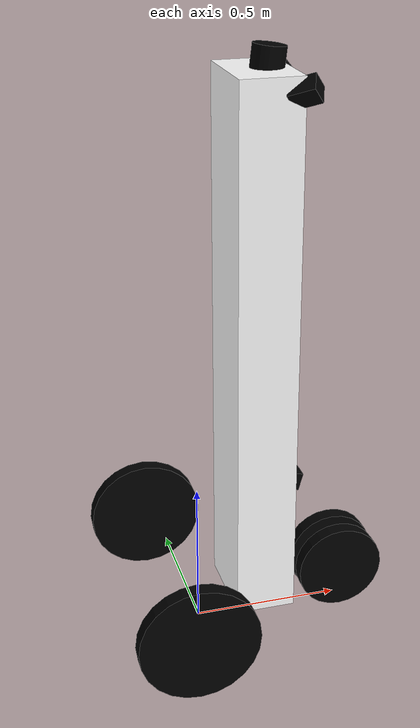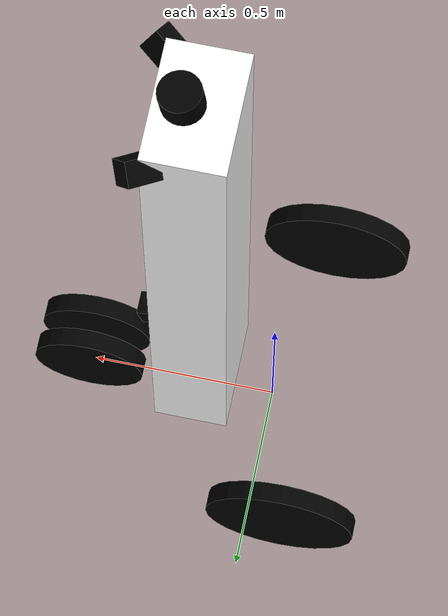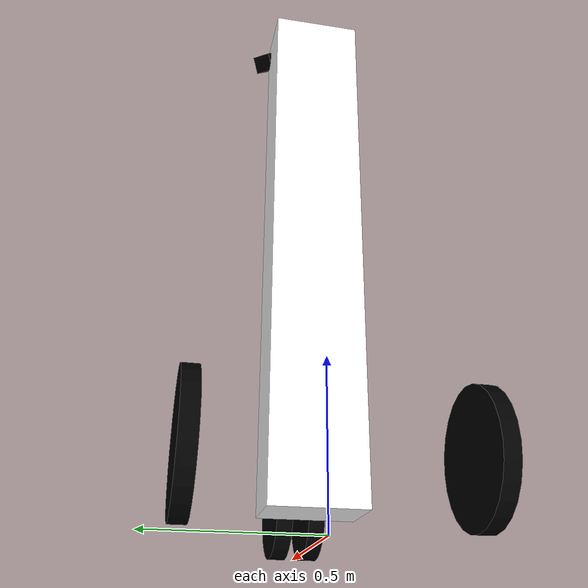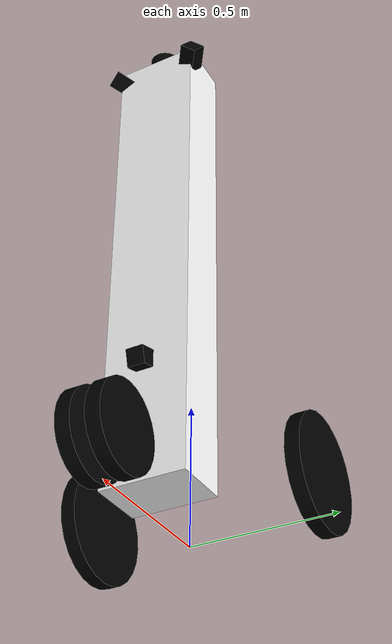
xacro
<?xml version="1.0"?>

<robot xmlns:xacro="https://www.ros.org/wiki/xacro" name="Navvis" >
	<material name="white">
		<color rgba="1 1 1 1"/>
	</material>

	<material name="black">
		<color rgba="0 0 0 1"/>
	</material>

	<xacro:macro name="laser_vert" params="description xyz rpy">
		<link name="laser_vert_${description}">
			<visual>
				<geometry>
					<box size=".062 .062 .087"/>
				</geometry>
				<material name="black"/>
			</visual>
			<collision>
				<geometry>
					<box size=".062 .062 .087"/>
				</geometry>
			</collision>
		</link>
		<joint name="base2laser_vert_${description}" type="fixed">
			<parent link="base" />
			<child link="laser_vert_${description}"/>
			<origin xyz="${xyz}" rpy="${rpy}"/>
		</joint>
	</xacro:macro>
	<xacro:macro name="wheel" params="description xyz radius">
		<link name="wheel_${description}">
			<visual>
				<geometry>
					<cylinder radius="${radius}" length=".05"/>
				</geometry>
				<material name="black"/>
			</visual>
			<collision>
				<geometry>
					<cylinder radius="${radius}" length=".05"/>
				</geometry>
			</collision>
		</link>
		<joint name="base2wheel_${description}" type="continuous">
			<parent link="base" />
			<child link="wheel_${description}"/>
			<origin xyz="${xyz}" rpy="-1.5707 0.0 0.0"/>
			<axis xyz="0 1 0"/>
			<limit effort=".1" velocity="99"/>
		</joint>
	</xacro:macro>
	<xacro:macro name="base">
		<origin xyz=".2 0 .99"/>
		<geometry>
			<box size="0.2 0.3 1.80"/>
		</geometry>
	</xacro:macro>

	<xacro:macro name="laser_horiz">
		<geometry>
			<cylinder radius="0.052" length="0.072"/>
		</geometry>
	</xacro:macro>
	<link name="base">
			<visual>
				<material name="white"/>
				<xacro:base/>
			</visual>
			<collision>
				<geometry>
					<box size="0.94 0.78 1.98"/>
				</geometry>
			</collision>
	</link>
	<link name="laser_horiz">
			<visual>
				<material name="black"/>
				<xacro:laser_horiz/>
			</visual>
			<collision>
				<xacro:laser_horiz/>
			</collision>
	</link>

	<joint name="base2laser_horiz" type="fixed">
		<parent link="base" />
		<child link="laser_horiz"/>
		<origin xyz="0.2325 0.0001 1.9201" rpy="-0.00121 0.11465 -0.001530"/>
	</joint>

	<xacro:laser_vert description="top_right" xyz="0.2978 -0.1450 1.8451" rpy="-1.176 0.6313 -1.9377"/>
	<xacro:laser_vert description="top_left" xyz="0.2997 0.1531 1.8443" rpy="1.178 0.6198 1.9560"/>
	<xacro:laser_vert description="bottom" xyz="0.3158 -0.0021 .51" rpy="3.1355 -1.3045 0.0025"/>

	<xacro:wheel description="right" xyz="-0.1 -0.4 .2" radius=".2"/>
	<xacro:wheel description="left" xyz="-0.1 0.4 .2" radius=".2"/>
	<xacro:wheel description="front_right" xyz="0.5 -0.05 .15" radius=".15"/>
	<xacro:wheel description="front_left" xyz="0.5 0.05 .15" radius=".15"/>
</robot>
